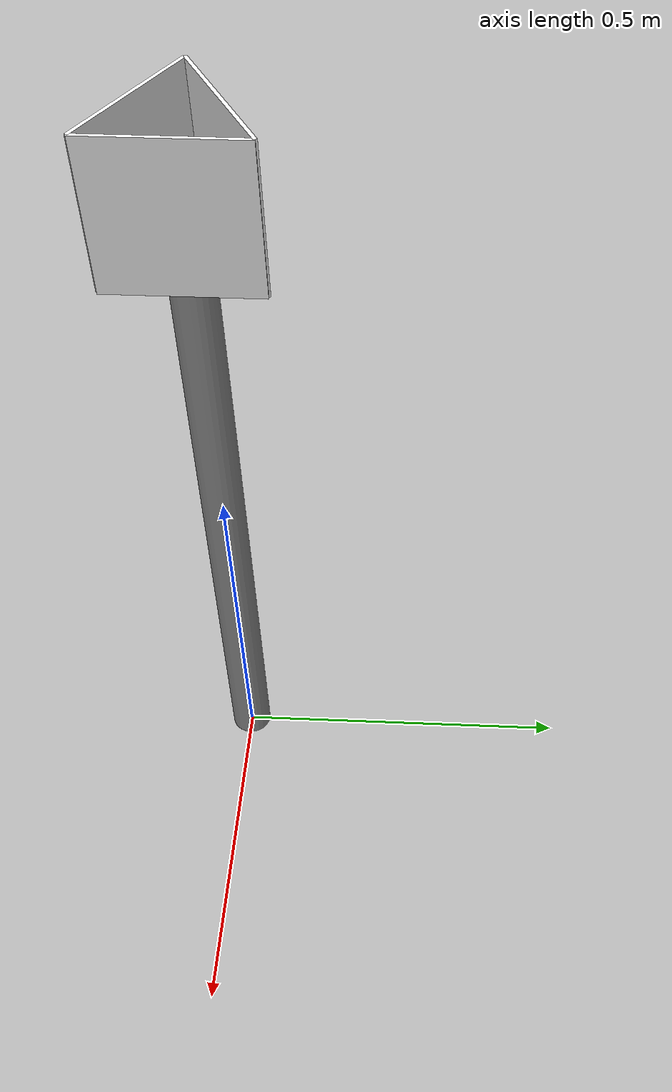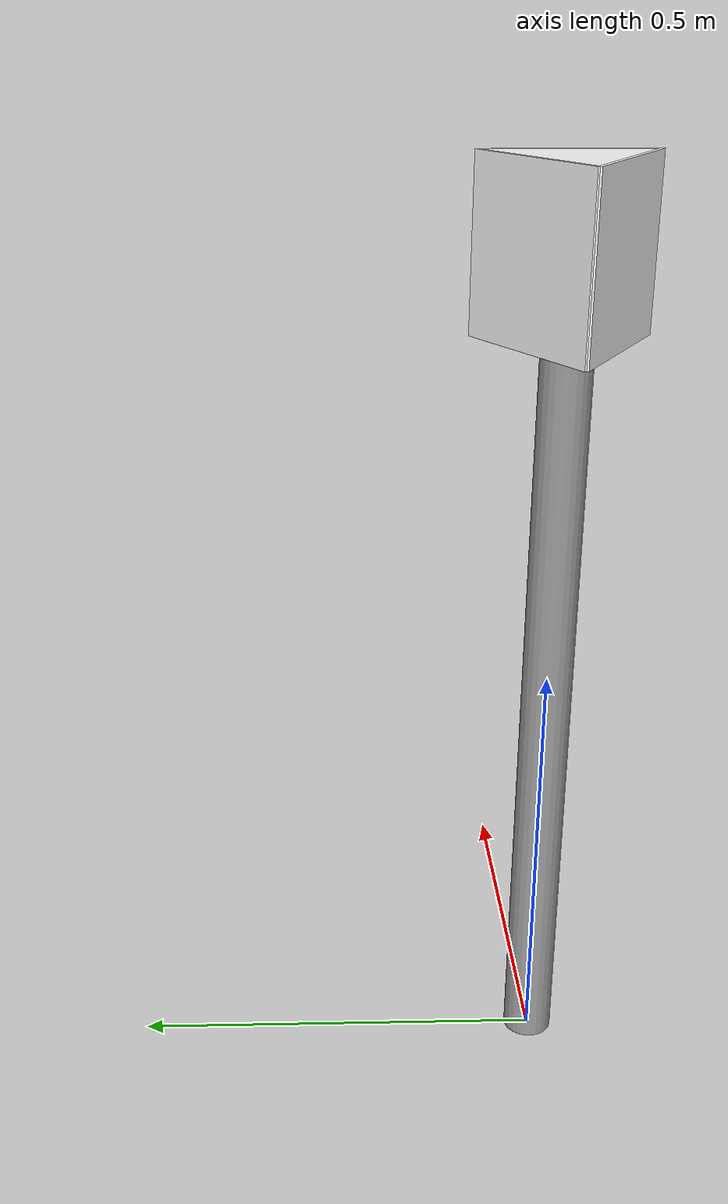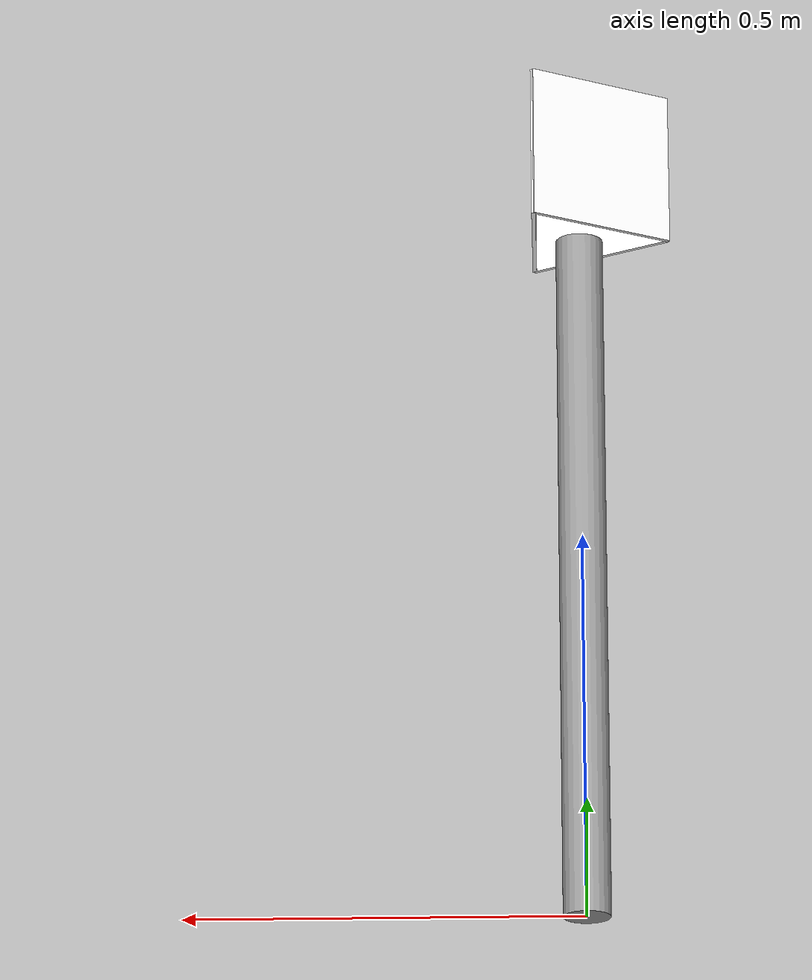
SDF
<?xml version="1.0" ?>
<sdf version="1.6">
  <model name="aruco_post">
    <static>true</static>
    <link name="link">

      <!-- Support post -->
      <visual name="post_visual">
        <pose>0 0 0.45 0 0 0</pose>
        <geometry>
          <cylinder>
            <radius>0.03</radius>
            <length>0.9</length>
          </cylinder>
        </geometry>
        <material>
          <ambient>0.5 0.5 0.5 1</ambient>
          <diffuse>0.6 0.6 0.6 1</diffuse>
          <specular>0.1 0.1 0.1 1</specular>
        </material>
      </visual>
      <collision name="post_collision">
        <pose>0 0 0.45 0 0 0</pose>
        <geometry>
          <cylinder>
            <radius>0.03</radius>
            <length>0.9</length>
          </cylinder>
        </geometry>
      </collision>

      <!-- Tag face 0 (yaw 0) -->
      <visual name="tag_face_0">
        <pose>0.057735 0 1.0 0 0 0</pose>
        <geometry>
          <box>
            <size>0.005 0.20 0.20</size>
          </box>
        </geometry>
        <material>
          <ambient>1 1 1 1</ambient>
          <diffuse>1 1 1 1</diffuse>
          <pbr>
            <metal>
              <albedo_map>materials/textures/aruco_4x4_50_id4.png</albedo_map>
              <metalness>0.0</metalness>
              <roughness>1.0</roughness>
            </metal>
          </pbr>
        </material>
      </visual>

      <!-- Tag face 1 (yaw 120 deg) -->
      <visual name="tag_face_1">
        <pose>-0.0288675 0.05 1.0 0 0 2.0943951</pose>
        <geometry>
          <box>
            <size>0.005 0.20 0.20</size>
          </box>
        </geometry>
        <material>
          <ambient>1 1 1 1</ambient>
          <diffuse>1 1 1 1</diffuse>
          <pbr>
            <metal>
              <albedo_map>materials/textures/aruco_4x4_50_id4.png</albedo_map>
              <metalness>0.0</metalness>
              <roughness>1.0</roughness>
            </metal>
          </pbr>
        </material>
      </visual>

      <!-- Tag face 2 (yaw 240 deg) -->
      <visual name="tag_face_2">
        <pose>-0.0288675 -0.05 1.0 0 0 4.1887902</pose>
        <geometry>
          <box>
            <size>0.005 0.20 0.20</size>
          </box>
        </geometry>
        <material>
          <ambient>1 1 1 1</ambient>
          <diffuse>1 1 1 1</diffuse>
          <pbr>
            <metal>
              <albedo_map>materials/textures/aruco_4x4_50_id4.png</albedo_map>
              <metalness>0.0</metalness>
              <roughness>1.0</roughness>
            </metal>
          </pbr>
        </material>
      </visual>

      <!-- Prism collision (bounding cylinder around the three faces) -->
      <collision name="prism_collision">
        <pose>0 0 1.0 0 0 0</pose>
        <geometry>
          <cylinder>
            <radius>0.063</radius>
            <length>0.20</length>
          </cylinder>
        </geometry>
      </collision>

    </link>
  </model>
</sdf>
